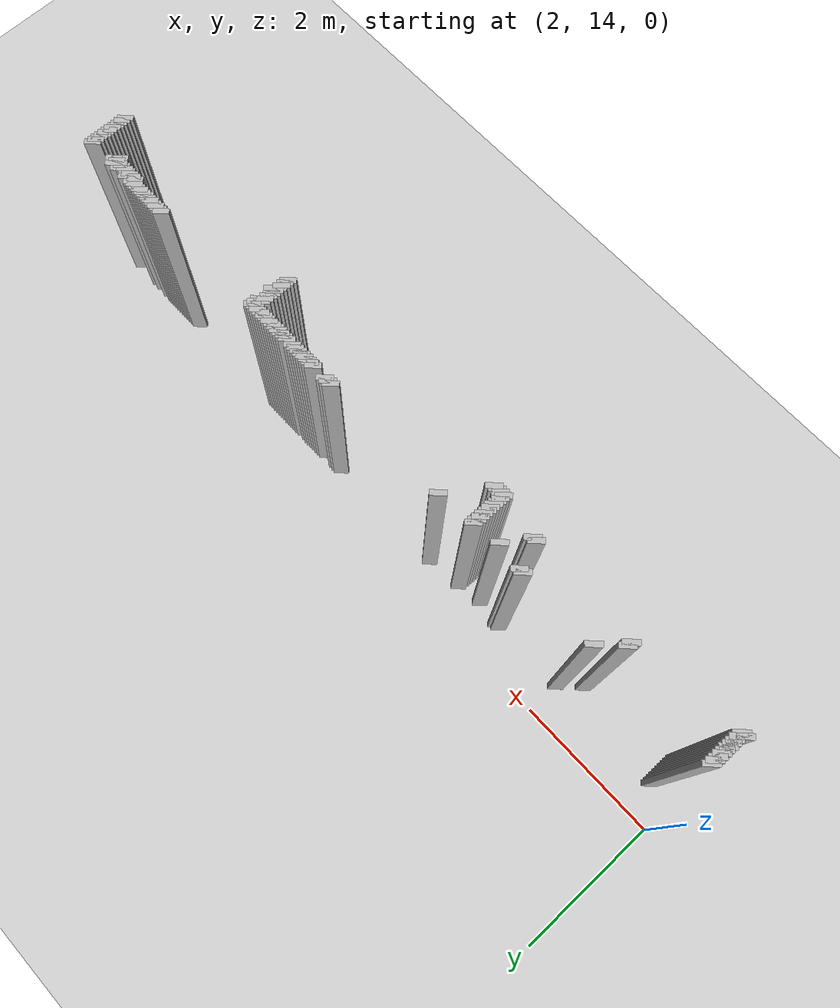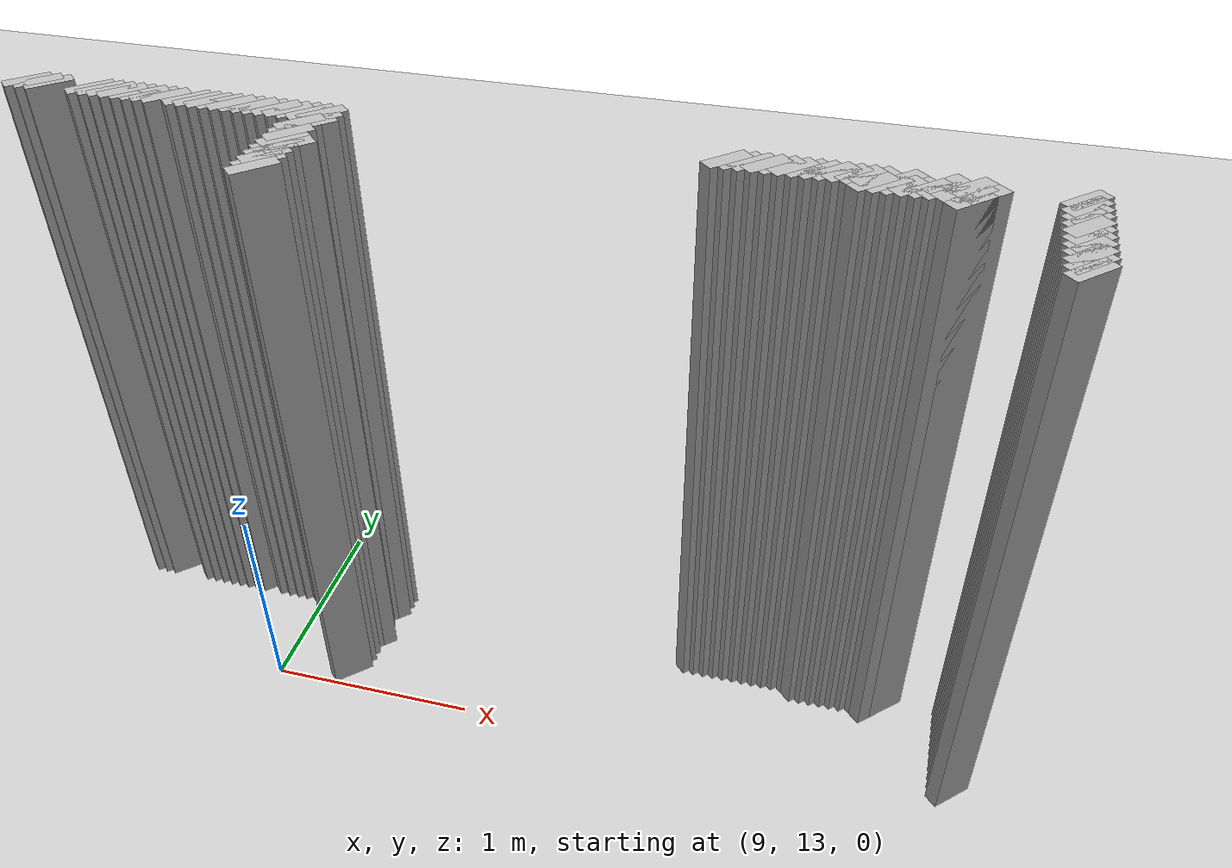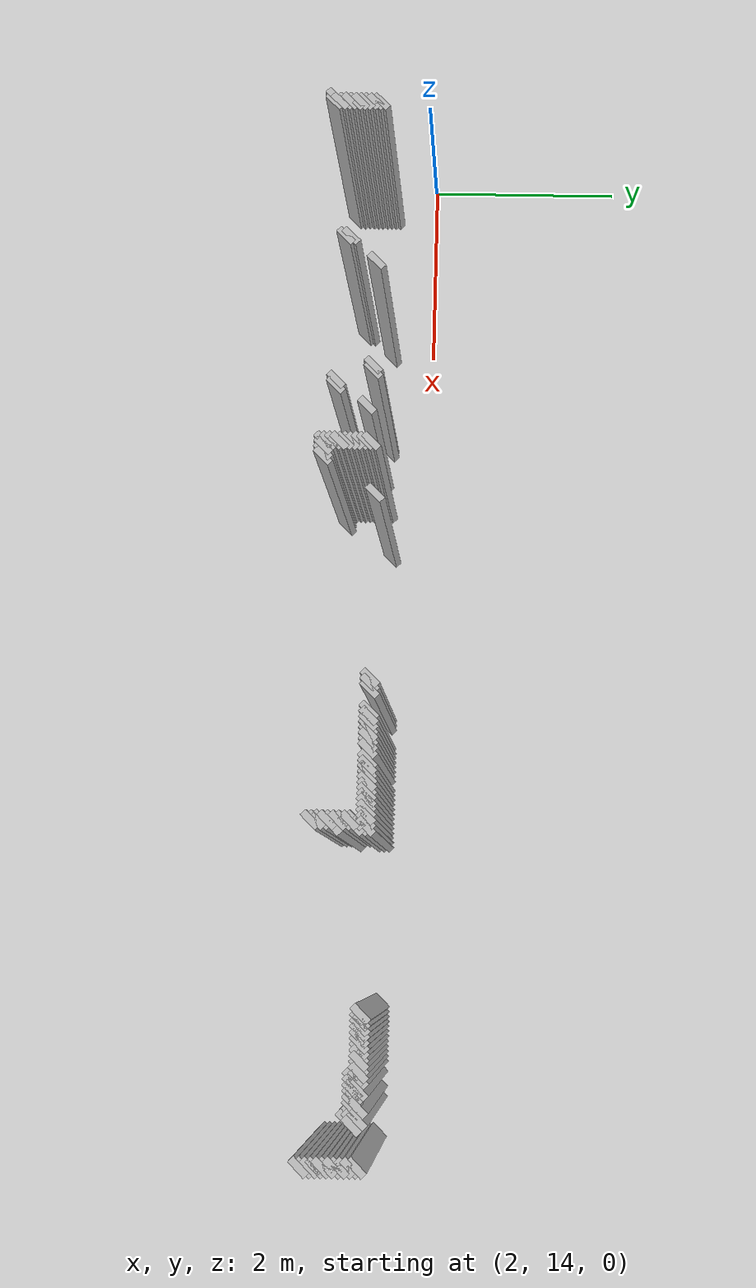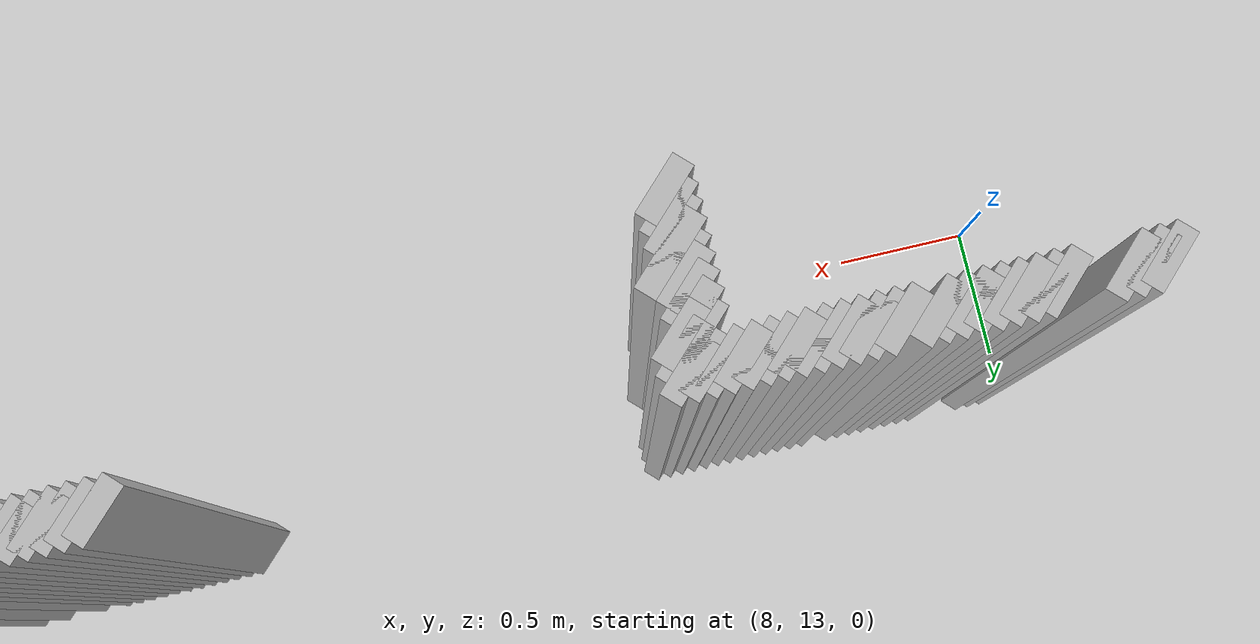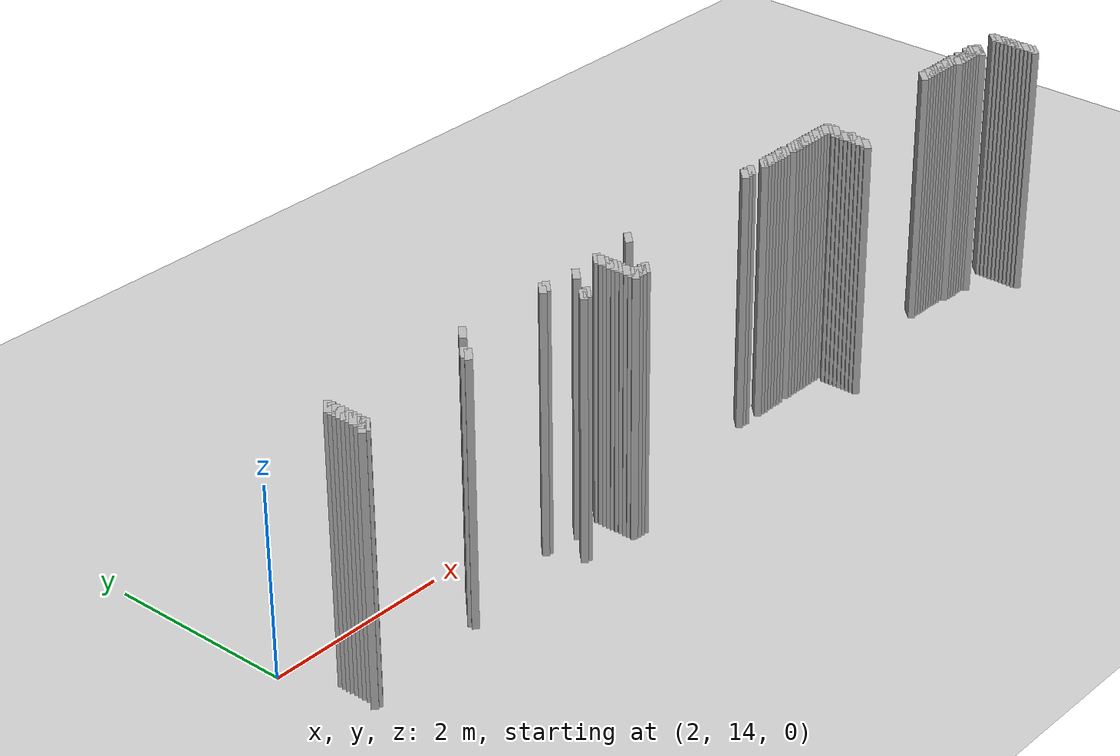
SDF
<sdf version="1.5">
 <world name="default">
  <include><uri>model://ground_plane</uri></include>
  <include><uri>model://sun</uri></include>
  <model name="grey_wall_742">
   <static>1</static>
   <link name="link">
    <pose>6.300000000000001 13.600000000000001  1.4 0 0 -0.7853981633974483</pose>
    <collision name="collision">
     <geometry><box><size>0.07071067811865576 .2  2.8</size></box></geometry>
    </collision>
    <visual name="visual">
     <cast_shadows>0</cast_shadows>
     <geometry><box><size>0.07071067811865576 .2  2.8</size></box></geometry>
    </visual>
   </link>
  </model>
  <model name="grey_wall_743">
   <static>1</static>
   <link name="link">
    <pose>8.05 13.600000000000001  1.4 0 0 -0.7853981633974483</pose>
    <collision name="collision">
     <geometry><box><size>0.07071067811865576 .2  2.8</size></box></geometry>
    </collision>
    <visual name="visual">
     <cast_shadows>0</cast_shadows>
     <geometry><box><size>0.07071067811865576 .2  2.8</size></box></geometry>
    </visual>
   </link>
  </model>
  <model name="grey_wall_744">
   <static>1</static>
   <link name="link">
    <pose>8.1 13.600000000000001  1.4 0 0 -0.7853981633974483</pose>
    <collision name="collision">
     <geometry><box><size>0.07071067811865576 .2  2.8</size></box></geometry>
    </collision>
    <visual name="visual">
     <cast_shadows>0</cast_shadows>
     <geometry><box><size>0.07071067811865576 .2  2.8</size></box></geometry>
    </visual>
   </link>
  </model>
  <model name="grey_wall_745">
   <static>1</static>
   <link name="link">
    <pose>8.15 13.600000000000001  1.4 0 0 -0.7853981633974483</pose>
    <collision name="collision">
     <geometry><box><size>0.07071067811865576 .2  2.8</size></box></geometry>
    </collision>
    <visual name="visual">
     <cast_shadows>0</cast_shadows>
     <geometry><box><size>0.07071067811865576 .2  2.8</size></box></geometry>
    </visual>
   </link>
  </model>
  <model name="grey_wall_746">
   <static>1</static>
   <link name="link">
    <pose>8.35 13.600000000000001  1.4 0 0 -0.7853981633974483</pose>
    <collision name="collision">
     <geometry><box><size>0.07071067811865576 .2  2.8</size></box></geometry>
    </collision>
    <visual name="visual">
     <cast_shadows>0</cast_shadows>
     <geometry><box><size>0.07071067811865576 .2  2.8</size></box></geometry>
    </visual>
   </link>
  </model>
  <model name="grey_wall_747">
   <static>1</static>
   <link name="link">
    <pose>8.4 13.600000000000001  1.4 0 0 -0.7853981633974483</pose>
    <collision name="collision">
     <geometry><box><size>0.07071067811865576 .2  2.8</size></box></geometry>
    </collision>
    <visual name="visual">
     <cast_shadows>0</cast_shadows>
     <geometry><box><size>0.07071067811865576 .2  2.8</size></box></geometry>
    </visual>
   </link>
  </model>
  <model name="grey_wall_748">
   <static>1</static>
   <link name="link">
    <pose>8.450000000000001 13.600000000000001  1.4 0 0 -0.7853981633974483</pose>
    <collision name="collision">
     <geometry><box><size>0.07071067811865576 .2  2.8</size></box></geometry>
    </collision>
    <visual name="visual">
     <cast_shadows>0</cast_shadows>
     <geometry><box><size>0.07071067811865576 .2  2.8</size></box></geometry>
    </visual>
   </link>
  </model>
  <model name="grey_wall_749">
   <static>1</static>
   <link name="link">
    <pose>8.5 13.600000000000001  1.4 0 0 -0.7853981633974483</pose>
    <collision name="collision">
     <geometry><box><size>0.07071067811865576 .2  2.8</size></box></geometry>
    </collision>
    <visual name="visual">
     <cast_shadows>0</cast_shadows>
     <geometry><box><size>0.07071067811865576 .2  2.8</size></box></geometry>
    </visual>
   </link>
  </model>
  <model name="grey_wall_750">
   <static>1</static>
   <link name="link">
    <pose>8.55 13.600000000000001  1.4 0 0 -0.7853981633974483</pose>
    <collision name="collision">
     <geometry><box><size>0.07071067811865576 .2  2.8</size></box></geometry>
    </collision>
    <visual name="visual">
     <cast_shadows>0</cast_shadows>
     <geometry><box><size>0.07071067811865576 .2  2.8</size></box></geometry>
    </visual>
   </link>
  </model>
  <model name="grey_wall_751">
   <static>1</static>
   <link name="link">
    <pose>8.6 13.600000000000001  1.4 0 0 -0.7853981633974483</pose>
    <collision name="collision">
     <geometry><box><size>0.07071067811865576 .2  2.8</size></box></geometry>
    </collision>
    <visual name="visual">
     <cast_shadows>0</cast_shadows>
     <geometry><box><size>0.07071067811865576 .2  2.8</size></box></geometry>
    </visual>
   </link>
  </model>
  <model name="grey_wall_752">
   <static>1</static>
   <link name="link">
    <pose>8.65 13.600000000000001  1.4 0 0 -0.7853981633974483</pose>
    <collision name="collision">
     <geometry><box><size>0.07071067811865576 .2  2.8</size></box></geometry>
    </collision>
    <visual name="visual">
     <cast_shadows>0</cast_shadows>
     <geometry><box><size>0.07071067811865576 .2  2.8</size></box></geometry>
    </visual>
   </link>
  </model>
  <model name="grey_wall_753">
   <static>1</static>
   <link name="link">
    <pose>8.700000000000001 13.600000000000001  1.4 0 0 -0.7853981633974483</pose>
    <collision name="collision">
     <geometry><box><size>0.07071067811865576 .2  2.8</size></box></geometry>
    </collision>
    <visual name="visual">
     <cast_shadows>0</cast_shadows>
     <geometry><box><size>0.07071067811865576 .2  2.8</size></box></geometry>
    </visual>
   </link>
  </model>
  <model name="grey_wall_754">
   <static>1</static>
   <link name="link">
    <pose>8.8 13.600000000000001  1.4 0 0 -0.7853981633974483</pose>
    <collision name="collision">
     <geometry><box><size>0.07071067811865576 .2  2.8</size></box></geometry>
    </collision>
    <visual name="visual">
     <cast_shadows>0</cast_shadows>
     <geometry><box><size>0.07071067811865576 .2  2.8</size></box></geometry>
    </visual>
   </link>
  </model>
  <model name="grey_wall_755">
   <static>1</static>
   <link name="link">
    <pose>8.85 13.600000000000001  1.4 0 0 -0.7853981633974483</pose>
    <collision name="collision">
     <geometry><box><size>0.07071067811865576 .2  2.8</size></box></geometry>
    </collision>
    <visual name="visual">
     <cast_shadows>0</cast_shadows>
     <geometry><box><size>0.07071067811865576 .2  2.8</size></box></geometry>
    </visual>
   </link>
  </model>
  <model name="grey_wall_756">
   <static>1</static>
   <link name="link">
    <pose>8.9 13.600000000000001  1.4 0 0 -0.7853981633974483</pose>
    <collision name="collision">
     <geometry><box><size>0.07071067811865576 .2  2.8</size></box></geometry>
    </collision>
    <visual name="visual">
     <cast_shadows>0</cast_shadows>
     <geometry><box><size>0.07071067811865576 .2  2.8</size></box></geometry>
    </visual>
   </link>
  </model>
  <model name="grey_wall_757">
   <static>1</static>
   <link name="link">
    <pose>8.950000000000001 13.600000000000001  1.4 0 0 -0.7853981633974483</pose>
    <collision name="collision">
     <geometry><box><size>0.07071067811865576 .2  2.8</size></box></geometry>
    </collision>
    <visual name="visual">
     <cast_shadows>0</cast_shadows>
     <geometry><box><size>0.07071067811865576 .2  2.8</size></box></geometry>
    </visual>
   </link>
  </model>
  <model name="grey_wall_758">
   <static>1</static>
   <link name="link">
    <pose>9.0 13.600000000000001  1.4 0 0 -0.7853981633974483</pose>
    <collision name="collision">
     <geometry><box><size>0.07071067811865576 .2  2.8</size></box></geometry>
    </collision>
    <visual name="visual">
     <cast_shadows>0</cast_shadows>
     <geometry><box><size>0.07071067811865576 .2  2.8</size></box></geometry>
    </visual>
   </link>
  </model>
  <model name="grey_wall_759">
   <static>1</static>
   <link name="link">
    <pose>9.05 13.600000000000001  1.4 0 0 -0.7853981633974483</pose>
    <collision name="collision">
     <geometry><box><size>0.07071067811865576 .2  2.8</size></box></geometry>
    </collision>
    <visual name="visual">
     <cast_shadows>0</cast_shadows>
     <geometry><box><size>0.07071067811865576 .2  2.8</size></box></geometry>
    </visual>
   </link>
  </model>
  <model name="grey_wall_760">
   <static>1</static>
   <link name="link">
    <pose>9.1 13.600000000000001  1.4 0 0 -0.7853981633974483</pose>
    <collision name="collision">
     <geometry><box><size>0.07071067811865576 .2  2.8</size></box></geometry>
    </collision>
    <visual name="visual">
     <cast_shadows>0</cast_shadows>
     <geometry><box><size>0.07071067811865576 .2  2.8</size></box></geometry>
    </visual>
   </link>
  </model>
  <model name="grey_wall_761">
   <static>1</static>
   <link name="link">
    <pose>9.15 13.600000000000001  1.4 0 0 -0.7853981633974483</pose>
    <collision name="collision">
     <geometry><box><size>0.07071067811865576 .2  2.8</size></box></geometry>
    </collision>
    <visual name="visual">
     <cast_shadows>0</cast_shadows>
     <geometry><box><size>0.07071067811865576 .2  2.8</size></box></geometry>
    </visual>
   </link>
  </model>
  <model name="grey_wall_762">
   <static>1</static>
   <link name="link">
    <pose>9.200000000000001 13.600000000000001  1.4 0 0 -0.7853981633974483</pose>
    <collision name="collision">
     <geometry><box><size>0.07071067811865576 .2  2.8</size></box></geometry>
    </collision>
    <visual name="visual">
     <cast_shadows>0</cast_shadows>
     <geometry><box><size>0.07071067811865576 .2  2.8</size></box></geometry>
    </visual>
   </link>
  </model>
  <model name="grey_wall_763">
   <static>1</static>
   <link name="link">
    <pose>9.25 13.600000000000001  1.4 0 0 -0.7853981633974483</pose>
    <collision name="collision">
     <geometry><box><size>0.07071067811865576 .2  2.8</size></box></geometry>
    </collision>
    <visual name="visual">
     <cast_shadows>0</cast_shadows>
     <geometry><box><size>0.07071067811865576 .2  2.8</size></box></geometry>
    </visual>
   </link>
  </model>
  <model name="grey_wall_764">
   <static>1</static>
   <link name="link">
    <pose>9.3 13.600000000000001  1.4 0 0 -0.7853981633974483</pose>
    <collision name="collision">
     <geometry><box><size>0.07071067811865576 .2  2.8</size></box></geometry>
    </collision>
    <visual name="visual">
     <cast_shadows>0</cast_shadows>
     <geometry><box><size>0.07071067811865576 .2  2.8</size></box></geometry>
    </visual>
   </link>
  </model>
  <model name="grey_wall_765">
   <static>1</static>
   <link name="link">
    <pose>9.35 13.600000000000001  1.4 0 0 -0.7853981633974483</pose>
    <collision name="collision">
     <geometry><box><size>0.07071067811865576 .2  2.8</size></box></geometry>
    </collision>
    <visual name="visual">
     <cast_shadows>0</cast_shadows>
     <geometry><box><size>0.07071067811865576 .2  2.8</size></box></geometry>
    </visual>
   </link>
  </model>
  <model name="grey_wall_766">
   <static>1</static>
   <link name="link">
    <pose>9.4 13.600000000000001  1.4 0 0 -0.7853981633974483</pose>
    <collision name="collision">
     <geometry><box><size>0.07071067811865576 .2  2.8</size></box></geometry>
    </collision>
    <visual name="visual">
     <cast_shadows>0</cast_shadows>
     <geometry><box><size>0.07071067811865576 .2  2.8</size></box></geometry>
    </visual>
   </link>
  </model>
  <model name="grey_wall_767">
   <static>1</static>
   <link name="link">
    <pose>11.05 13.600000000000001  1.4 0 0 -0.7853981633974483</pose>
    <collision name="collision">
     <geometry><box><size>0.07071067811865576 .2  2.8</size></box></geometry>
    </collision>
    <visual name="visual">
     <cast_shadows>0</cast_shadows>
     <geometry><box><size>0.07071067811865576 .2  2.8</size></box></geometry>
    </visual>
   </link>
  </model>
  <model name="grey_wall_768">
   <static>1</static>
   <link name="link">
    <pose>11.100000000000001 13.600000000000001  1.4 0 0 -0.7853981633974483</pose>
    <collision name="collision">
     <geometry><box><size>0.07071067811865576 .2  2.8</size></box></geometry>
    </collision>
    <visual name="visual">
     <cast_shadows>0</cast_shadows>
     <geometry><box><size>0.07071067811865576 .2  2.8</size></box></geometry>
    </visual>
   </link>
  </model>
  <model name="grey_wall_769">
   <static>1</static>
   <link name="link">
    <pose>11.15 13.600000000000001  1.4 0 0 -0.7853981633974483</pose>
    <collision name="collision">
     <geometry><box><size>0.07071067811865576 .2  2.8</size></box></geometry>
    </collision>
    <visual name="visual">
     <cast_shadows>0</cast_shadows>
     <geometry><box><size>0.07071067811865576 .2  2.8</size></box></geometry>
    </visual>
   </link>
  </model>
  <model name="grey_wall_770">
   <static>1</static>
   <link name="link">
    <pose>11.200000000000001 13.600000000000001  1.4 0 0 -0.7853981633974483</pose>
    <collision name="collision">
     <geometry><box><size>0.07071067811865576 .2  2.8</size></box></geometry>
    </collision>
    <visual name="visual">
     <cast_shadows>0</cast_shadows>
     <geometry><box><size>0.07071067811865576 .2  2.8</size></box></geometry>
    </visual>
   </link>
  </model>
  <model name="grey_wall_771">
   <static>1</static>
   <link name="link">
    <pose>11.25 13.600000000000001  1.4 0 0 -0.7853981633974483</pose>
    <collision name="collision">
     <geometry><box><size>0.07071067811865576 .2  2.8</size></box></geometry>
    </collision>
    <visual name="visual">
     <cast_shadows>0</cast_shadows>
     <geometry><box><size>0.07071067811865576 .2  2.8</size></box></geometry>
    </visual>
   </link>
  </model>
  <model name="grey_wall_772">
   <static>1</static>
   <link name="link">
    <pose>11.3 13.600000000000001  1.4 0 0 -0.7853981633974483</pose>
    <collision name="collision">
     <geometry><box><size>0.07071067811865576 .2  2.8</size></box></geometry>
    </collision>
    <visual name="visual">
     <cast_shadows>0</cast_shadows>
     <geometry><box><size>0.07071067811865576 .2  2.8</size></box></geometry>
    </visual>
   </link>
  </model>
  <model name="grey_wall_773">
   <static>1</static>
   <link name="link">
    <pose>11.350000000000001 13.600000000000001  1.4 0 0 -0.7853981633974483</pose>
    <collision name="collision">
     <geometry><box><size>0.07071067811865576 .2  2.8</size></box></geometry>
    </collision>
    <visual name="visual">
     <cast_shadows>0</cast_shadows>
     <geometry><box><size>0.07071067811865576 .2  2.8</size></box></geometry>
    </visual>
   </link>
  </model>
  <model name="grey_wall_774">
   <static>1</static>
   <link name="link">
    <pose>11.4 13.600000000000001  1.4 0 0 -0.7853981633974483</pose>
    <collision name="collision">
     <geometry><box><size>0.07071067811865576 .2  2.8</size></box></geometry>
    </collision>
    <visual name="visual">
     <cast_shadows>0</cast_shadows>
     <geometry><box><size>0.07071067811865576 .2  2.8</size></box></geometry>
    </visual>
   </link>
  </model>
  <model name="grey_wall_775">
   <static>1</static>
   <link name="link">
    <pose>11.450000000000001 13.600000000000001  1.4 0 0 -0.7853981633974483</pose>
    <collision name="collision">
     <geometry><box><size>0.07071067811865576 .2  2.8</size></box></geometry>
    </collision>
    <visual name="visual">
     <cast_shadows>0</cast_shadows>
     <geometry><box><size>0.07071067811865576 .2  2.8</size></box></geometry>
    </visual>
   </link>
  </model>
  <model name="grey_wall_776">
   <static>1</static>
   <link name="link">
    <pose>11.5 13.600000000000001  1.4 0 0 -0.7853981633974483</pose>
    <collision name="collision">
     <geometry><box><size>0.07071067811865576 .2  2.8</size></box></geometry>
    </collision>
    <visual name="visual">
     <cast_shadows>0</cast_shadows>
     <geometry><box><size>0.07071067811865576 .2  2.8</size></box></geometry>
    </visual>
   </link>
  </model>
  <model name="grey_wall_777">
   <static>1</static>
   <link name="link">
    <pose>11.55 13.600000000000001  1.4 0 0 -0.7853981633974483</pose>
    <collision name="collision">
     <geometry><box><size>0.07071067811865576 .2  2.8</size></box></geometry>
    </collision>
    <visual name="visual">
     <cast_shadows>0</cast_shadows>
     <geometry><box><size>0.07071067811865576 .2  2.8</size></box></geometry>
    </visual>
   </link>
  </model>
  <model name="grey_wall_778">
   <static>1</static>
   <link name="link">
    <pose>11.600000000000001 13.600000000000001  1.4 0 0 -0.7853981633974483</pose>
    <collision name="collision">
     <geometry><box><size>0.07071067811865576 .2  2.8</size></box></geometry>
    </collision>
    <visual name="visual">
     <cast_shadows>0</cast_shadows>
     <geometry><box><size>0.07071067811865576 .2  2.8</size></box></geometry>
    </visual>
   </link>
  </model>
  <model name="grey_wall_779">
   <static>1</static>
   <link name="link">
    <pose>11.700000000000001 13.600000000000001  1.4 0 0 -0.7853981633974483</pose>
    <collision name="collision">
     <geometry><box><size>0.07071067811865576 .2  2.8</size></box></geometry>
    </collision>
    <visual name="visual">
     <cast_shadows>0</cast_shadows>
     <geometry><box><size>0.07071067811865576 .2  2.8</size></box></geometry>
    </visual>
   </link>
  </model>
  <model name="grey_wall_780">
   <static>1</static>
   <link name="link">
    <pose>11.850000000000001 13.600000000000001  1.4 0 0 -0.7853981633974483</pose>
    <collision name="collision">
     <geometry><box><size>0.07071067811865576 .2  2.8</size></box></geometry>
    </collision>
    <visual name="visual">
     <cast_shadows>0</cast_shadows>
     <geometry><box><size>0.07071067811865576 .2  2.8</size></box></geometry>
    </visual>
   </link>
  </model>
  <model name="grey_wall_781">
   <static>1</static>
   <link name="link">
    <pose>11.950000000000001 13.600000000000001  1.4 0 0 -0.7853981633974483</pose>
    <collision name="collision">
     <geometry><box><size>0.07071067811865576 .2  2.8</size></box></geometry>
    </collision>
    <visual name="visual">
     <cast_shadows>0</cast_shadows>
     <geometry><box><size>0.07071067811865576 .2  2.8</size></box></geometry>
    </visual>
   </link>
  </model>
  <model name="grey_wall_782">
   <static>1</static>
   <link name="link">
    <pose>12.350000000000001 13.600000000000001  1.4 0 0 -0.7853981633974483</pose>
    <collision name="collision">
     <geometry><box><size>0.07071067811865576 .2  2.8</size></box></geometry>
    </collision>
    <visual name="visual">
     <cast_shadows>0</cast_shadows>
     <geometry><box><size>0.07071067811865576 .2  2.8</size></box></geometry>
    </visual>
   </link>
  </model>
  <model name="grey_wall_783">
   <static>1</static>
   <link name="link">
    <pose>2.35 13.55  1.4 0 0 -0.7853981633974572</pose>
    <collision name="collision">
     <geometry><box><size>0.07071067811865513 .2  2.8</size></box></geometry>
    </collision>
    <visual name="visual">
     <cast_shadows>0</cast_shadows>
     <geometry><box><size>0.07071067811865513 .2  2.8</size></box></geometry>
    </visual>
   </link>
  </model>
  <model name="grey_wall_784">
   <static>1</static>
   <link name="link">
    <pose>4.0 13.55  1.4 0 0 -0.7853981633974527</pose>
    <collision name="collision">
     <geometry><box><size>0.07071067811865545 .2  2.8</size></box></geometry>
    </collision>
    <visual name="visual">
     <cast_shadows>0</cast_shadows>
     <geometry><box><size>0.07071067811865545 .2  2.8</size></box></geometry>
    </visual>
   </link>
  </model>
  <model name="grey_wall_785">
   <static>1</static>
   <link name="link">
    <pose>5.050000000000001 13.55  1.4 0 0 -0.7853981633974483</pose>
    <collision name="collision">
     <geometry><box><size>0.07071067811865576 .2  2.8</size></box></geometry>
    </collision>
    <visual name="visual">
     <cast_shadows>0</cast_shadows>
     <geometry><box><size>0.07071067811865576 .2  2.8</size></box></geometry>
    </visual>
   </link>
  </model>
  <model name="grey_wall_786">
   <static>1</static>
   <link name="link">
    <pose>5.1000000000000005 13.55  1.4 0 0 -0.7853981633974483</pose>
    <collision name="collision">
     <geometry><box><size>0.07071067811865576 .2  2.8</size></box></geometry>
    </collision>
    <visual name="visual">
     <cast_shadows>0</cast_shadows>
     <geometry><box><size>0.07071067811865576 .2  2.8</size></box></geometry>
    </visual>
   </link>
  </model>
  <model name="grey_wall_787">
   <static>1</static>
   <link name="link">
    <pose>5.800000000000001 13.55  1.4 0 0 -0.7853981633974483</pose>
    <collision name="collision">
     <geometry><box><size>0.07071067811865576 .2  2.8</size></box></geometry>
    </collision>
    <visual name="visual">
     <cast_shadows>0</cast_shadows>
     <geometry><box><size>0.07071067811865576 .2  2.8</size></box></geometry>
    </visual>
   </link>
  </model>
  <model name="grey_wall_788">
   <static>1</static>
   <link name="link">
    <pose>9.4 13.55  1.4 0 0 -0.7853981633974483</pose>
    <collision name="collision">
     <geometry><box><size>0.07071067811865576 .2  2.8</size></box></geometry>
    </collision>
    <visual name="visual">
     <cast_shadows>0</cast_shadows>
     <geometry><box><size>0.07071067811865576 .2  2.8</size></box></geometry>
    </visual>
   </link>
  </model>
  <model name="grey_wall_789">
   <static>1</static>
   <link name="link">
    <pose>11.600000000000001 13.55  1.4 0 0 -0.7853981633974483</pose>
    <collision name="collision">
     <geometry><box><size>0.07071067811865576 .2  2.8</size></box></geometry>
    </collision>
    <visual name="visual">
     <cast_shadows>0</cast_shadows>
     <geometry><box><size>0.07071067811865576 .2  2.8</size></box></geometry>
    </visual>
   </link>
  </model>
  <model name="grey_wall_790">
   <static>1</static>
   <link name="link">
    <pose>11.65 13.55  1.4 0 0 -0.7853981633974483</pose>
    <collision name="collision">
     <geometry><box><size>0.07071067811865576 .2  2.8</size></box></geometry>
    </collision>
    <visual name="visual">
     <cast_shadows>0</cast_shadows>
     <geometry><box><size>0.07071067811865576 .2  2.8</size></box></geometry>
    </visual>
   </link>
  </model>
  <model name="grey_wall_791">
   <static>1</static>
   <link name="link">
    <pose>11.700000000000001 13.55  1.4 0 0 -0.7853981633974483</pose>
    <collision name="collision">
     <geometry><box><size>0.07071067811865576 .2  2.8</size></box></geometry>
    </collision>
    <visual name="visual">
     <cast_shadows>0</cast_shadows>
     <geometry><box><size>0.07071067811865576 .2  2.8</size></box></geometry>
    </visual>
   </link>
  </model>
  <model name="grey_wall_792">
   <static>1</static>
   <link name="link">
    <pose>11.75 13.55  1.4 0 0 -0.7853981633974483</pose>
    <collision name="collision">
     <geometry><box><size>0.07071067811865576 .2  2.8</size></box></geometry>
    </collision>
    <visual name="visual">
     <cast_shadows>0</cast_shadows>
     <geometry><box><size>0.07071067811865576 .2  2.8</size></box></geometry>
    </visual>
   </link>
  </model>
  <model name="grey_wall_793">
   <static>1</static>
   <link name="link">
    <pose>11.8 13.55  1.4 0 0 -0.7853981633974483</pose>
    <collision name="collision">
     <geometry><box><size>0.07071067811865576 .2  2.8</size></box></geometry>
    </collision>
    <visual name="visual">
     <cast_shadows>0</cast_shadows>
     <geometry><box><size>0.07071067811865576 .2  2.8</size></box></geometry>
    </visual>
   </link>
  </model>
  <model name="grey_wall_794">
   <static>1</static>
   <link name="link">
    <pose>11.850000000000001 13.55  1.4 0 0 -0.7853981633974483</pose>
    <collision name="collision">
     <geometry><box><size>0.07071067811865576 .2  2.8</size></box></geometry>
    </collision>
    <visual name="visual">
     <cast_shadows>0</cast_shadows>
     <geometry><box><size>0.07071067811865576 .2  2.8</size></box></geometry>
    </visual>
   </link>
  </model>
  <model name="grey_wall_795">
   <static>1</static>
   <link name="link">
    <pose>11.9 13.55  1.4 0 0 -0.7853981633974483</pose>
    <collision name="collision">
     <geometry><box><size>0.07071067811865576 .2  2.8</size></box></geometry>
    </collision>
    <visual name="visual">
     <cast_shadows>0</cast_shadows>
     <geometry><box><size>0.07071067811865576 .2  2.8</size></box></geometry>
    </visual>
   </link>
  </model>
  <model name="grey_wall_796">
   <static>1</static>
   <link name="link">
    <pose>11.950000000000001 13.55  1.4 0 0 -0.7853981633974483</pose>
    <collision name="collision">
     <geometry><box><size>0.07071067811865576 .2  2.8</size></box></geometry>
    </collision>
    <visual name="visual">
     <cast_shadows>0</cast_shadows>
     <geometry><box><size>0.07071067811865576 .2  2.8</size></box></geometry>
    </visual>
   </link>
  </model>
  <model name="grey_wall_797">
   <static>1</static>
   <link name="link">
    <pose>12.0 13.55  1.4 0 0 -0.7853981633974483</pose>
    <collision name="collision">
     <geometry><box><size>0.07071067811865576 .2  2.8</size></box></geometry>
    </collision>
    <visual name="visual">
     <cast_shadows>0</cast_shadows>
     <geometry><box><size>0.07071067811865576 .2  2.8</size></box></geometry>
    </visual>
   </link>
  </model>
  <model name="grey_wall_798">
   <static>1</static>
   <link name="link">
    <pose>12.350000000000001 13.55  1.4 0 0 -0.7853981633974483</pose>
    <collision name="collision">
     <geometry><box><size>0.07071067811865576 .2  2.8</size></box></geometry>
    </collision>
    <visual name="visual">
     <cast_shadows>0</cast_shadows>
     <geometry><box><size>0.07071067811865576 .2  2.8</size></box></geometry>
    </visual>
   </link>
  </model>
  <model name="grey_wall_799">
   <static>1</static>
   <link name="link">
    <pose>2.35 13.5  1.4 0 0 -0.7853981633974572</pose>
    <collision name="collision">
     <geometry><box><size>0.07071067811865513 .2  2.8</size></box></geometry>
    </collision>
    <visual name="visual">
     <cast_shadows>0</cast_shadows>
     <geometry><box><size>0.07071067811865513 .2  2.8</size></box></geometry>
    </visual>
   </link>
  </model>
  <model name="grey_wall_800">
   <static>1</static>
   <link name="link">
    <pose>5.45 13.5  1.4 0 0 -0.7853981633974483</pose>
    <collision name="collision">
     <geometry><box><size>0.07071067811865576 .2  2.8</size></box></geometry>
    </collision>
    <visual name="visual">
     <cast_shadows>0</cast_shadows>
     <geometry><box><size>0.07071067811865576 .2  2.8</size></box></geometry>
    </visual>
   </link>
  </model>
  <model name="grey_wall_801">
   <static>1</static>
   <link name="link">
    <pose>5.800000000000001 13.5  1.4 0 0 -0.7853981633974483</pose>
    <collision name="collision">
     <geometry><box><size>0.07071067811865576 .2  2.8</size></box></geometry>
    </collision>
    <visual name="visual">
     <cast_shadows>0</cast_shadows>
     <geometry><box><size>0.07071067811865576 .2  2.8</size></box></geometry>
    </visual>
   </link>
  </model>
  <model name="grey_wall_802">
   <static>1</static>
   <link name="link">
    <pose>9.35 13.5  1.4 0 0 -0.7853981633974483</pose>
    <collision name="collision">
     <geometry><box><size>0.07071067811865576 .2  2.8</size></box></geometry>
    </collision>
    <visual name="visual">
     <cast_shadows>0</cast_shadows>
     <geometry><box><size>0.07071067811865576 .2  2.8</size></box></geometry>
    </visual>
   </link>
  </model>
  <model name="grey_wall_803">
   <static>1</static>
   <link name="link">
    <pose>9.4 13.5  1.4 0 0 -0.7853981633974483</pose>
    <collision name="collision">
     <geometry><box><size>0.07071067811865576 .2  2.8</size></box></geometry>
    </collision>
    <visual name="visual">
     <cast_shadows>0</cast_shadows>
     <geometry><box><size>0.07071067811865576 .2  2.8</size></box></geometry>
    </visual>
   </link>
  </model>
  <model name="grey_wall_804">
   <static>1</static>
   <link name="link">
    <pose>11.950000000000001 13.5  1.4 0 0 -0.7853981633974483</pose>
    <collision name="collision">
     <geometry><box><size>0.07071067811865576 .2  2.8</size></box></geometry>
    </collision>
    <visual name="visual">
     <cast_shadows>0</cast_shadows>
     <geometry><box><size>0.07071067811865576 .2  2.8</size></box></geometry>
    </visual>
   </link>
  </model>
  <model name="grey_wall_805">
   <static>1</static>
   <link name="link">
    <pose>12.350000000000001 13.5  1.4 0 0 -0.7853981633974483</pose>
    <collision name="collision">
     <geometry><box><size>0.07071067811865576 .2  2.8</size></box></geometry>
    </collision>
    <visual name="visual">
     <cast_shadows>0</cast_shadows>
     <geometry><box><size>0.07071067811865576 .2  2.8</size></box></geometry>
    </visual>
   </link>
  </model>
  <model name="grey_wall_806">
   <static>1</static>
   <link name="link">
    <pose>2.35 13.450000000000001  1.4 0 0 -0.7853981633974572</pose>
    <collision name="collision">
     <geometry><box><size>0.07071067811865513 .2  2.8</size></box></geometry>
    </collision>
    <visual name="visual">
     <cast_shadows>0</cast_shadows>
     <geometry><box><size>0.07071067811865513 .2  2.8</size></box></geometry>
    </visual>
   </link>
  </model>
  <model name="grey_wall_807">
   <static>1</static>
   <link name="link">
    <pose>5.800000000000001 13.450000000000001  1.4 0 0 -0.7853981633974483</pose>
    <collision name="collision">
     <geometry><box><size>0.07071067811865576 .2  2.8</size></box></geometry>
    </collision>
    <visual name="visual">
     <cast_shadows>0</cast_shadows>
     <geometry><box><size>0.07071067811865576 .2  2.8</size></box></geometry>
    </visual>
   </link>
  </model>
  <model name="grey_wall_808">
   <static>1</static>
   <link name="link">
    <pose>9.35 13.450000000000001  1.4 0 0 -0.7853981633974483</pose>
    <collision name="collision">
     <geometry><box><size>0.07071067811865576 .2  2.8</size></box></geometry>
    </collision>
    <visual name="visual">
     <cast_shadows>0</cast_shadows>
     <geometry><box><size>0.07071067811865576 .2  2.8</size></box></geometry>
    </visual>
   </link>
  </model>
  <model name="grey_wall_809">
   <static>1</static>
   <link name="link">
    <pose>12.350000000000001 13.450000000000001  1.4 0 0 -0.7853981633974483</pose>
    <collision name="collision">
     <geometry><box><size>0.07071067811865576 .2  2.8</size></box></geometry>
    </collision>
    <visual name="visual">
     <cast_shadows>0</cast_shadows>
     <geometry><box><size>0.07071067811865576 .2  2.8</size></box></geometry>
    </visual>
   </link>
  </model>
  <model name="grey_wall_810">
   <static>1</static>
   <link name="link">
    <pose>2.35 13.4  1.4 0 0 -0.7853981633974572</pose>
    <collision name="collision">
     <geometry><box><size>0.07071067811865513 .2  2.8</size></box></geometry>
    </collision>
    <visual name="visual">
     <cast_shadows>0</cast_shadows>
     <geometry><box><size>0.07071067811865513 .2  2.8</size></box></geometry>
    </visual>
   </link>
  </model>
  <model name="grey_wall_811">
   <static>1</static>
   <link name="link">
    <pose>5.800000000000001 13.4  1.4 0 0 -0.7853981633974483</pose>
    <collision name="collision">
     <geometry><box><size>0.07071067811865576 .2  2.8</size></box></geometry>
    </collision>
    <visual name="visual">
     <cast_shadows>0</cast_shadows>
     <geometry><box><size>0.07071067811865576 .2  2.8</size></box></geometry>
    </visual>
   </link>
  </model>
  <model name="grey_wall_812">
   <static>1</static>
   <link name="link">
    <pose>9.35 13.4  1.4 0 0 -0.7853981633974483</pose>
    <collision name="collision">
     <geometry><box><size>0.07071067811865576 .2  2.8</size></box></geometry>
    </collision>
    <visual name="visual">
     <cast_shadows>0</cast_shadows>
     <geometry><box><size>0.07071067811865576 .2  2.8</size></box></geometry>
    </visual>
   </link>
  </model>
  <model name="grey_wall_813">
   <static>1</static>
   <link name="link">
    <pose>12.350000000000001 13.4  1.4 0 0 -0.7853981633974483</pose>
    <collision name="collision">
     <geometry><box><size>0.07071067811865576 .2  2.8</size></box></geometry>
    </collision>
    <visual name="visual">
     <cast_shadows>0</cast_shadows>
     <geometry><box><size>0.07071067811865576 .2  2.8</size></box></geometry>
    </visual>
   </link>
  </model>
  <model name="grey_wall_814">
   <static>1</static>
   <link name="link">
    <pose>2.35 13.350000000000001  1.4 0 0 -0.7853981633974572</pose>
    <collision name="collision">
     <geometry><box><size>0.07071067811865513 .2  2.8</size></box></geometry>
    </collision>
    <visual name="visual">
     <cast_shadows>0</cast_shadows>
     <geometry><box><size>0.07071067811865513 .2  2.8</size></box></geometry>
    </visual>
   </link>
  </model>
  <model name="grey_wall_815">
   <static>1</static>
   <link name="link">
    <pose>5.800000000000001 13.350000000000001  1.4 0 0 -0.7853981633974483</pose>
    <collision name="collision">
     <geometry><box><size>0.07071067811865576 .2  2.8</size></box></geometry>
    </collision>
    <visual name="visual">
     <cast_shadows>0</cast_shadows>
     <geometry><box><size>0.07071067811865576 .2  2.8</size></box></geometry>
    </visual>
   </link>
  </model>
  <model name="grey_wall_816">
   <static>1</static>
   <link name="link">
    <pose>9.35 13.350000000000001  1.4 0 0 -0.7853981633974483</pose>
    <collision name="collision">
     <geometry><box><size>0.07071067811865576 .2  2.8</size></box></geometry>
    </collision>
    <visual name="visual">
     <cast_shadows>0</cast_shadows>
     <geometry><box><size>0.07071067811865576 .2  2.8</size></box></geometry>
    </visual>
   </link>
  </model>
  <model name="grey_wall_817">
   <static>1</static>
   <link name="link">
    <pose>12.350000000000001 13.350000000000001  1.4 0 0 -0.7853981633974483</pose>
    <collision name="collision">
     <geometry><box><size>0.07071067811865576 .2  2.8</size></box></geometry>
    </collision>
    <visual name="visual">
     <cast_shadows>0</cast_shadows>
     <geometry><box><size>0.07071067811865576 .2  2.8</size></box></geometry>
    </visual>
   </link>
  </model>
  <model name="grey_wall_818">
   <static>1</static>
   <link name="link">
    <pose>2.35 13.3  1.4 0 0 -0.7853981633974572</pose>
    <collision name="collision">
     <geometry><box><size>0.07071067811865513 .2  2.8</size></box></geometry>
    </collision>
    <visual name="visual">
     <cast_shadows>0</cast_shadows>
     <geometry><box><size>0.07071067811865513 .2  2.8</size></box></geometry>
    </visual>
   </link>
  </model>
  <model name="grey_wall_819">
   <static>1</static>
   <link name="link">
    <pose>3.75 13.3  1.4 0 0 -0.7853981633974572</pose>
    <collision name="collision">
     <geometry><box><size>0.07071067811865513 .2  2.8</size></box></geometry>
    </collision>
    <visual name="visual">
     <cast_shadows>0</cast_shadows>
     <geometry><box><size>0.07071067811865513 .2  2.8</size></box></geometry>
    </visual>
   </link>
  </model>
  <model name="grey_wall_820">
   <static>1</static>
   <link name="link">
    <pose>5.800000000000001 13.3  1.4 0 0 -0.7853981633974483</pose>
    <collision name="collision">
     <geometry><box><size>0.07071067811865576 .2  2.8</size></box></geometry>
    </collision>
    <visual name="visual">
     <cast_shadows>0</cast_shadows>
     <geometry><box><size>0.07071067811865576 .2  2.8</size></box></geometry>
    </visual>
   </link>
  </model>
  <model name="grey_wall_821">
   <static>1</static>
   <link name="link">
    <pose>9.35 13.3  1.4 0 0 -0.7853981633974483</pose>
    <collision name="collision">
     <geometry><box><size>0.07071067811865576 .2  2.8</size></box></geometry>
    </collision>
    <visual name="visual">
     <cast_shadows>0</cast_shadows>
     <geometry><box><size>0.07071067811865576 .2  2.8</size></box></geometry>
    </visual>
   </link>
  </model>
  <model name="grey_wall_822">
   <static>1</static>
   <link name="link">
    <pose>9.4 13.3  1.4 0 0 -0.7853981633974483</pose>
    <collision name="collision">
     <geometry><box><size>0.07071067811865576 .2  2.8</size></box></geometry>
    </collision>
    <visual name="visual">
     <cast_shadows>0</cast_shadows>
     <geometry><box><size>0.07071067811865576 .2  2.8</size></box></geometry>
    </visual>
   </link>
  </model>
  <model name="grey_wall_823">
   <static>1</static>
   <link name="link">
    <pose>12.350000000000001 13.3  1.4 0 0 -0.7853981633974483</pose>
    <collision name="collision">
     <geometry><box><size>0.07071067811865576 .2  2.8</size></box></geometry>
    </collision>
    <visual name="visual">
     <cast_shadows>0</cast_shadows>
     <geometry><box><size>0.07071067811865576 .2  2.8</size></box></geometry>
    </visual>
   </link>
  </model>
  <model name="grey_wall_824">
   <static>1</static>
   <link name="link">
    <pose>2.35 13.25  1.4 0 0 -0.7853981633974572</pose>
    <collision name="collision">
     <geometry><box><size>0.07071067811865513 .2  2.8</size></box></geometry>
    </collision>
    <visual name="visual">
     <cast_shadows>0</cast_shadows>
     <geometry><box><size>0.07071067811865513 .2  2.8</size></box></geometry>
    </visual>
   </link>
  </model>
  <model name="grey_wall_825">
   <static>1</static>
   <link name="link">
    <pose>3.75 13.25  1.4 0 0 -0.7853981633974572</pose>
    <collision name="collision">
     <geometry><box><size>0.07071067811865513 .2  2.8</size></box></geometry>
    </collision>
    <visual name="visual">
     <cast_shadows>0</cast_shadows>
     <geometry><box><size>0.07071067811865513 .2  2.8</size></box></geometry>
    </visual>
   </link>
  </model>
  <model name="grey_wall_826">
   <static>1</static>
   <link name="link">
    <pose>5.800000000000001 13.25  1.4 0 0 -0.7853981633974483</pose>
    <collision name="collision">
     <geometry><box><size>0.07071067811865576 .2  2.8</size></box></geometry>
    </collision>
    <visual name="visual">
     <cast_shadows>0</cast_shadows>
     <geometry><box><size>0.07071067811865576 .2  2.8</size></box></geometry>
    </visual>
   </link>
  </model>
  <model name="grey_wall_827">
   <static>1</static>
   <link name="link">
    <pose>9.35 13.25  1.4 0 0 -0.7853981633974483</pose>
    <collision name="collision">
     <geometry><box><size>0.07071067811865576 .2  2.8</size></box></geometry>
    </collision>
    <visual name="visual">
     <cast_shadows>0</cast_shadows>
     <geometry><box><size>0.07071067811865576 .2  2.8</size></box></geometry>
    </visual>
   </link>
  </model>
  <model name="grey_wall_828">
   <static>1</static>
   <link name="link">
    <pose>12.350000000000001 13.25  1.4 0 0 -0.7853981633974483</pose>
    <collision name="collision">
     <geometry><box><size>0.07071067811865576 .2  2.8</size></box></geometry>
    </collision>
    <visual name="visual">
     <cast_shadows>0</cast_shadows>
     <geometry><box><size>0.07071067811865576 .2  2.8</size></box></geometry>
    </visual>
   </link>
  </model>
  <model name="grey_wall_829">
   <static>1</static>
   <link name="link">
    <pose>2.35 13.200000000000001  1.4 0 0 -0.7853981633974572</pose>
    <collision name="collision">
     <geometry><box><size>0.07071067811865513 .2  2.8</size></box></geometry>
    </collision>
    <visual name="visual">
     <cast_shadows>0</cast_shadows>
     <geometry><box><size>0.07071067811865513 .2  2.8</size></box></geometry>
    </visual>
   </link>
  </model>
  <model name="grey_wall_830">
   <static>1</static>
   <link name="link">
    <pose>5.2 13.200000000000001  1.4 0 0 -0.7853981633974483</pose>
    <collision name="collision">
     <geometry><box><size>0.07071067811865576 .2  2.8</size></box></geometry>
    </collision>
    <visual name="visual">
     <cast_shadows>0</cast_shadows>
     <geometry><box><size>0.07071067811865576 .2  2.8</size></box></geometry>
    </visual>
   </link>
  </model>
  <model name="grey_wall_831">
   <static>1</static>
   <link name="link">
    <pose>5.25 13.200000000000001  1.4 0 0 -0.7853981633974483</pose>
    <collision name="collision">
     <geometry><box><size>0.07071067811865576 .2  2.8</size></box></geometry>
    </collision>
    <visual name="visual">
     <cast_shadows>0</cast_shadows>
     <geometry><box><size>0.07071067811865576 .2  2.8</size></box></geometry>
    </visual>
   </link>
  </model>
  <model name="grey_wall_832">
   <static>1</static>
   <link name="link">
    <pose>5.800000000000001 13.200000000000001  1.4 0 0 -0.7853981633974483</pose>
    <collision name="collision">
     <geometry><box><size>0.07071067811865576 .2  2.8</size></box></geometry>
    </collision>
    <visual name="visual">
     <cast_shadows>0</cast_shadows>
     <geometry><box><size>0.07071067811865576 .2  2.8</size></box></geometry>
    </visual>
   </link>
  </model>
  <model name="grey_wall_833">
   <static>1</static>
   <link name="link">
    <pose>9.35 13.200000000000001  1.4 0 0 -0.7853981633974483</pose>
    <collision name="collision">
     <geometry><box><size>0.07071067811865576 .2  2.8</size></box></geometry>
    </collision>
    <visual name="visual">
     <cast_shadows>0</cast_shadows>
     <geometry><box><size>0.07071067811865576 .2  2.8</size></box></geometry>
    </visual>
   </link>
  </model>
  <model name="grey_wall_834">
   <static>1</static>
   <link name="link">
    <pose>12.350000000000001 13.200000000000001  1.4 0 0 -0.7853981633974483</pose>
    <collision name="collision">
     <geometry><box><size>0.07071067811865576 .2  2.8</size></box></geometry>
    </collision>
    <visual name="visual">
     <cast_shadows>0</cast_shadows>
     <geometry><box><size>0.07071067811865576 .2  2.8</size></box></geometry>
    </visual>
   </link>
  </model>
  <model name="grey_wall_835">
   <static>1</static>
   <link name="link">
    <pose>2.35 13.15  1.4 0 0 -0.7853981633974572</pose>
    <collision name="collision">
     <geometry><box><size>0.07071067811865513 .2  2.8</size></box></geometry>
    </collision>
    <visual name="visual">
     <cast_shadows>0</cast_shadows>
     <geometry><box><size>0.07071067811865513 .2  2.8</size></box></geometry>
    </visual>
   </link>
  </model>
  <model name="grey_wall_836">
   <static>1</static>
   <link name="link">
    <pose>5.800000000000001 13.15  1.4 0 0 -0.7853981633974483</pose>
    <collision name="collision">
     <geometry><box><size>0.07071067811865576 .2  2.8</size></box></geometry>
    </collision>
    <visual name="visual">
     <cast_shadows>0</cast_shadows>
     <geometry><box><size>0.07071067811865576 .2  2.8</size></box></geometry>
    </visual>
   </link>
  </model>
  <model name="grey_wall_837">
   <static>1</static>
   <link name="link">
    <pose>9.35 13.15  1.4 0 0 -0.7853981633974483</pose>
    <collision name="collision">
     <geometry><box><size>0.07071067811865576 .2  2.8</size></box></geometry>
    </collision>
    <visual name="visual">
     <cast_shadows>0</cast_shadows>
     <geometry><box><size>0.07071067811865576 .2  2.8</size></box></geometry>
    </visual>
   </link>
  </model>
  <model name="grey_wall_838">
   <static>1</static>
   <link name="link">
    <pose>12.350000000000001 13.15  1.4 0 0 -0.7853981633974483</pose>
    <collision name="collision">
     <geometry><box><size>0.07071067811865576 .2  2.8</size></box></geometry>
    </collision>
    <visual name="visual">
     <cast_shadows>0</cast_shadows>
     <geometry><box><size>0.07071067811865576 .2  2.8</size></box></geometry>
    </visual>
   </link>
  </model>
  <model name="grey_wall_839">
   <static>1</static>
   <link name="link">
    <pose>2.3000000000000003 13.100000000000001  1.4 0 0 -0.7853981633974572</pose>
    <collision name="collision">
     <geometry><box><size>0.07071067811865513 .2  2.8</size></box></geometry>
    </collision>
    <visual name="visual">
     <cast_shadows>0</cast_shadows>
     <geometry><box><size>0.07071067811865513 .2  2.8</size></box></geometry>
    </visual>
   </link>
  </model>
  <model name="grey_wall_840">
   <static>1</static>
   <link name="link">
    <pose>2.35 13.100000000000001  1.4 0 0 -0.7853981633974572</pose>
    <collision name="collision">
     <geometry><box><size>0.07071067811865513 .2  2.8</size></box></geometry>
    </collision>
    <visual name="visual">
     <cast_shadows>0</cast_shadows>
     <geometry><box><size>0.07071067811865513 .2  2.8</size></box></geometry>
    </visual>
   </link>
  </model>
  <model name="grey_wall_841">
   <static>1</static>
   <link name="link">
    <pose>5.800000000000001 13.100000000000001  1.4 0 0 -0.7853981633974483</pose>
    <collision name="collision">
     <geometry><box><size>0.07071067811865576 .2  2.8</size></box></geometry>
    </collision>
    <visual name="visual">
     <cast_shadows>0</cast_shadows>
     <geometry><box><size>0.07071067811865576 .2  2.8</size></box></geometry>
    </visual>
   </link>
  </model>
  <model name="grey_wall_842">
   <static>1</static>
   <link name="link">
    <pose>5.8500000000000005 13.100000000000001  1.4 0 0 -0.7853981633974483</pose>
    <collision name="collision">
     <geometry><box><size>0.07071067811865576 .2  2.8</size></box></geometry>
    </collision>
    <visual name="visual">
     <cast_shadows>0</cast_shadows>
     <geometry><box><size>0.07071067811865576 .2  2.8</size></box></geometry>
    </visual>
   </link>
  </model>
  <model name="grey_wall_843">
   <static>1</static>
   <link name="link">
    <pose>5.9 13.100000000000001  1.4 0 0 -0.7853981633974483</pose>
    <collision name="collision">
     <geometry><box><size>0.07071067811865576 .2  2.8</size></box></geometry>
    </collision>
    <visual name="visual">
     <cast_shadows>0</cast_shadows>
     <geometry><box><size>0.07071067811865576 .2  2.8</size></box></geometry>
    </visual>
   </link>
  </model>
  <model name="grey_wall_844">
   <static>1</static>
   <link name="link">
    <pose>5.95 13.100000000000001  1.4 0 0 -0.7853981633974483</pose>
    <collision name="collision">
     <geometry><box><size>0.07071067811865576 .2  2.8</size></box></geometry>
    </collision>
    <visual name="visual">
     <cast_shadows>0</cast_shadows>
     <geometry><box><size>0.07071067811865576 .2  2.8</size></box></geometry>
    </visual>
   </link>
  </model>
  <model name="grey_wall_845">
   <static>1</static>
   <link name="link">
    <pose>9.35 13.100000000000001  1.4 0 0 -0.7853981633974483</pose>
    <collision name="collision">
     <geometry><box><size>0.07071067811865576 .2  2.8</size></box></geometry>
    </collision>
    <visual name="visual">
     <cast_shadows>0</cast_shadows>
     <geometry><box><size>0.07071067811865576 .2  2.8</size></box></geometry>
    </visual>
   </link>
  </model>
  <model name="grey_wall_846">
   <static>1</static>
   <link name="link">
    <pose>12.350000000000001 13.100000000000001  1.4 0 0 -0.7853981633974483</pose>
    <collision name="collision">
     <geometry><box><size>0.07071067811865576 .2  2.8</size></box></geometry>
    </collision>
    <visual name="visual">
     <cast_shadows>0</cast_shadows>
     <geometry><box><size>0.07071067811865576 .2  2.8</size></box></geometry>
    </visual>
   </link>
  </model>
 </world>
</sdf>
